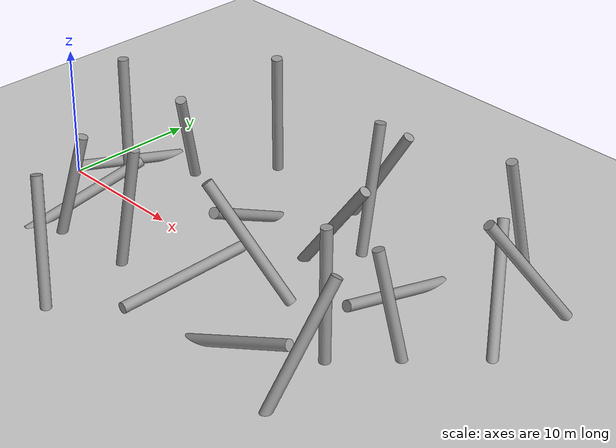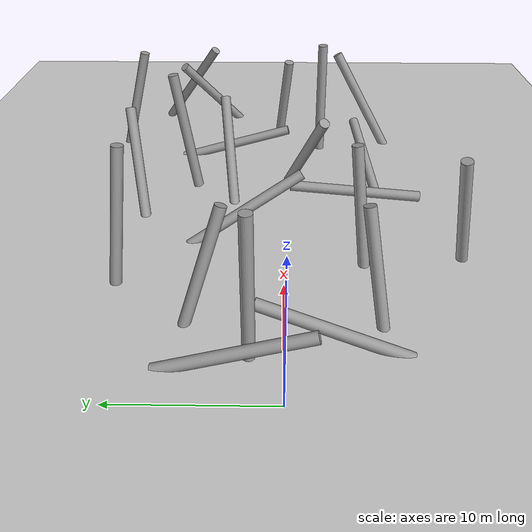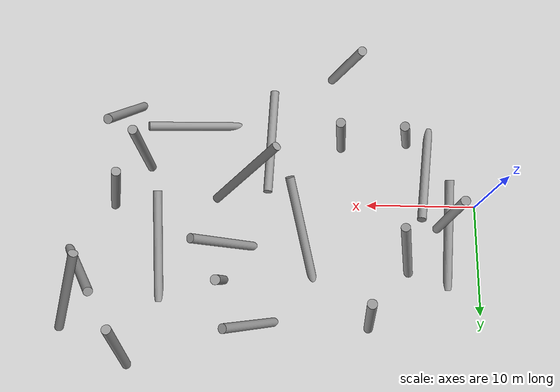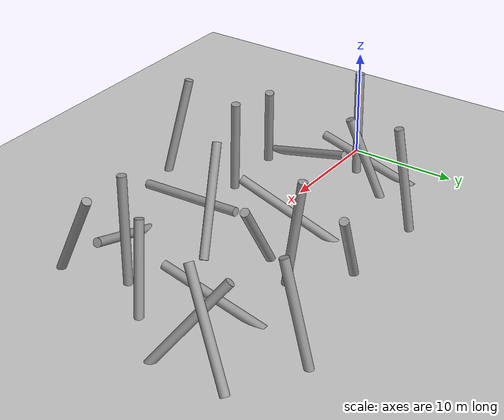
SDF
<sdf version="1.6">
 <world name="default">
  <light name="sun" type="directional">
   <pose>0 0 10 0 -0 0</pose>
   <diffuse>0.8 0.8 0.8 1</diffuse>
   <specular>0.2 0.2 0.2 1</specular>
   <attenuation>
    <range>1000</range>
    <constant>0.9</constant>
    <linear>0.01</linear>
    <quadratic>0.001</quadratic>
   </attenuation>
   <direction>-0.5 0.1 -0.9</direction>
  </light>
  <model name="ground_plane">
   <static>1</static>
   <link name="link">
    <collision name="collision">
     <geometry><plane><normal>0 0 1</normal><size>100 100</size></plane></geometry>
     <surface><friction><ode><mu>100</mu><mu2>50</mu2></ode></friction></surface>
    </collision>
    <visual name="visual">
     <cast_shadows>0</cast_shadows>
     <geometry><plane><normal>0 0 1</normal><size>100 100</size></plane></geometry>
     <material>
      <script><uri>file://media/materials/scripts/gazebo.material</uri><name>Gazebo/Grey</name></script>
     </material>
    </visual>
   </link>
  </model>
  <gravity>0 0 -9.8</gravity>
  <magnetic_field>6e-06 2.3e-05 -4.2e-05</magnetic_field>
  <atmosphere type="adiabatic"/>
  <physics name="default_physics" default="0" type="ode">
   <max_step_size>0.004</max_step_size>
   <real_time_factor>1</real_time_factor>
   <real_time_update_rate>250</real_time_update_rate>
  </physics>
  <scene><ambient>0.4 0.4 0.4 1</ambient><background>0.7 0.7 0.7 1</background><shadows>1</shadows></scene>
  <spherical_coordinates>
   <surface_model>EARTH_WGS84</surface_model>
   <latitude_deg>0</latitude_deg>
   <longitude_deg>0</longitude_deg>
   <elevation>0</elevation>
   <heading_deg>0</heading_deg>
  </spherical_coordinates>
  <model name="column">
   <pose>2.77239 2.86665 1 1.3 -0 0</pose>
   <static>1</static>
   <link name="link">
    <inertial>
     <mass>100</mass>
     <inertia><ixx>0.83</ixx><ixy>0</ixy><ixz>0</ixz><iyy>0.83</iyy><iyz>0</iyz><izz>0.83</izz></inertia>
    </inertial>
    <collision name="collision">
     <geometry><cylinder><radius>0.4</radius><length>10</length></cylinder></geometry>
    </collision>
    <visual name="visual">
     <geometry><cylinder><radius>0.4</radius><length>10</length></cylinder></geometry>
     <material>
      <script><uri>file://media/materials/scripts/gazebo.material</uri><name>Gazebo/Grey</name></script>
     </material>
    </visual>
   </link>
  </model>
  <model name="column_clone">
   <pose>4.67045 -2.93412 1 -1.25 0.5 0</pose>
   <static>1</static>
   <link name="link">
    <inertial>
     <mass>100</mass>
     <inertia><ixx>0.83</ixx><ixy>0</ixy><ixz>0</ixz><iyy>0.83</iyy><iyz>0</iyz><izz>0.83</izz></inertia>
    </inertial>
    <collision name="collision">
     <geometry><cylinder><radius>0.4</radius><length>10</length></cylinder></geometry>
    </collision>
    <visual name="visual">
     <geometry><cylinder><radius>0.4</radius><length>10</length></cylinder></geometry>
     <material>
      <script><uri>file://media/materials/scripts/gazebo.material</uri><name>Gazebo/Grey</name></script>
     </material>
    </visual>
   </link>
  </model>
  <model name="column_clone_0">
   <pose>12.7601 -5.21487 4 -0.1 0.1 0</pose>
   <static>1</static>
   <link name="link">
    <inertial>
     <mass>100</mass>
     <inertia><ixx>0.83</ixx><ixy>0</ixy><ixz>0</ixz><iyy>0.83</iyy><iyz>0</iyz><izz>0.83</izz></inertia>
    </inertial>
    <collision name="collision">
     <geometry><cylinder><radius>0.4</radius><length>10</length></cylinder></geometry>
    </collision>
    <visual name="visual">
     <geometry><cylinder><radius>0.4</radius><length>10</length></cylinder></geometry>
     <material>
      <script><uri>file://media/materials/scripts/gazebo.material</uri><name>Gazebo/Grey</name></script>
     </material>
    </visual>
   </link>
  </model>
  <model name="column_clone_1">
   <pose>16.1423 2.88614 2 1 0.45 0</pose>
   <static>1</static>
   <link name="link">
    <inertial>
     <mass>100</mass>
     <inertia><ixx>0.83</ixx><ixy>0</ixy><ixz>0</ixz><iyy>0.83</iyy><iyz>0</iyz><izz>0.83</izz></inertia>
    </inertial>
    <collision name="collision">
     <geometry><cylinder><radius>0.4</radius><length>10</length></cylinder></geometry>
    </collision>
    <visual name="visual">
     <geometry><cylinder><radius>0.4</radius><length>10</length></cylinder></geometry>
     <material>
      <script><uri>file://media/materials/scripts/gazebo.material</uri><name>Gazebo/Grey</name></script>
     </material>
    </visual>
   </link>
  </model>
  <model name="column_clone_2">
   <pose>20.2191 11.4265 3 -0.15 0.5 -0</pose>
   <static>1</static>
   <link name="link">
    <inertial>
     <mass>100</mass>
     <inertia><ixx>0.83</ixx><ixy>0</ixy><ixz>0</ixz><iyy>0.83</iyy><iyz>0</iyz><izz>0.83</izz></inertia>
    </inertial>
    <collision name="collision">
     <geometry><cylinder><radius>0.4</radius><length>10</length></cylinder></geometry>
    </collision>
    <visual name="visual">
     <geometry><cylinder><radius>0.4</radius><length>10</length></cylinder></geometry>
     <material>
      <script><uri>file://media/materials/scripts/gazebo.material</uri><name>Gazebo/Grey</name></script>
     </material>
    </visual>
   </link>
  </model>
  <model name="column_clone_3">
   <pose>6.95597 5.25991 3 0.3 0.2 0</pose>
   <static>1</static>
   <link name="link">
    <inertial>
     <mass>100</mass>
     <inertia><ixx>0.83</ixx><ixy>0</ixy><ixz>0</ixz><iyy>0.83</iyy><iyz>0</iyz><izz>0.83</izz></inertia>
    </inertial>
    <collision name="collision">
     <geometry><cylinder><radius>0.4</radius><length>10</length></cylinder></geometry>
    </collision>
    <visual name="visual">
     <geometry><cylinder><radius>0.4</radius><length>10</length></cylinder></geometry>
     <material>
      <script><uri>file://media/materials/scripts/gazebo.material</uri><name>Gazebo/Grey</name></script>
     </material>
    </visual>
   </link>
  </model>
  <model name="column_clone_4">
   <pose>35.6321 6.74866 3 -0.55 -0.5 0</pose>
   <static>1</static>
   <link name="link">
    <inertial>
     <mass>100</mass>
     <inertia><ixx>0.83</ixx><ixy>0</ixy><ixz>0</ixz><iyy>0.83</iyy><iyz>0</iyz><izz>0.83</izz></inertia>
    </inertial>
    <collision name="collision">
     <geometry><cylinder><radius>0.4</radius><length>10</length></cylinder></geometry>
    </collision>
    <visual name="visual">
     <geometry><cylinder><radius>0.4</radius><length>10</length></cylinder></geometry>
     <material>
      <script><uri>file://media/materials/scripts/gazebo.material</uri><name>Gazebo/Grey</name></script>
     </material>
    </visual>
   </link>
  </model>
  <model name="column_clone_5">
   <pose>32.0549 -7.3252 4 -0.5 0.15 -0</pose>
   <static>1</static>
   <link name="link">
    <inertial>
     <mass>100</mass>
     <inertia><ixx>0.83</ixx><ixy>0</ixy><ixz>0</ixz><iyy>0.83</iyy><iyz>0</iyz><izz>0.83</izz></inertia>
    </inertial>
    <collision name="collision">
     <geometry><cylinder><radius>0.4</radius><length>10</length></cylinder></geometry>
    </collision>
    <visual name="visual">
     <geometry><cylinder><radius>0.4</radius><length>10</length></cylinder></geometry>
     <material>
      <script><uri>file://media/materials/scripts/gazebo.material</uri><name>Gazebo/Grey</name></script>
     </material>
    </visual>
   </link>
  </model>
  <model name="column_clone_6">
   <pose>22.6792 4.3759 3 -0.100001 0.6 -0</pose>
   <static>1</static>
   <link name="link">
    <inertial>
     <mass>100</mass>
     <inertia><ixx>0.83</ixx><ixy>0</ixy><ixz>0</ixz><iyy>0.83</iyy><iyz>0</iyz><izz>0.83</izz></inertia>
    </inertial>
    <collision name="collision">
     <geometry><cylinder><radius>0.4</radius><length>10</length></cylinder></geometry>
    </collision>
    <visual name="visual">
     <geometry><cylinder><radius>0.4</radius><length>10</length></cylinder></geometry>
     <material>
      <script><uri>file://media/materials/scripts/gazebo.material</uri><name>Gazebo/Grey</name></script>
     </material>
    </visual>
   </link>
  </model>
  <model name="column_clone_7">
   <pose>19.0002 -5.5269 2 1.65 0.649999 -1e-06</pose>
   <static>1</static>
   <link name="link">
    <inertial>
     <mass>100</mass>
     <inertia><ixx>0.83</ixx><ixy>0</ixy><ixz>0</ixz><iyy>0.83</iyy><iyz>0</iyz><izz>0.83</izz></inertia>
    </inertial>
    <collision name="collision">
     <geometry><cylinder><radius>0.4</radius><length>10</length></cylinder></geometry>
    </collision>
    <visual name="visual">
     <geometry><cylinder><radius>0.4</radius><length>10</length></cylinder></geometry>
     <material>
      <script><uri>file://media/materials/scripts/gazebo.material</uri><name>Gazebo/Grey</name></script>
     </material>
    </visual>
   </link>
  </model>
  <model name="column_clone_8">
   <pose>6.75559 -5.66539 3 -0.15 0.2 0</pose>
   <static>1</static>
   <link name="link">
    <inertial>
     <mass>100</mass>
     <inertia><ixx>0.83</ixx><ixy>0</ixy><ixz>0</ixz><iyy>0.83</iyy><iyz>0</iyz><izz>0.83</izz></inertia>
    </inertial>
    <collision name="collision">
     <geometry><cylinder><radius>0.4</radius><length>10</length></cylinder></geometry>
    </collision>
    <visual name="visual">
     <geometry><cylinder><radius>0.4</radius><length>10</length></cylinder></geometry>
     <material>
      <script><uri>file://media/materials/scripts/gazebo.material</uri><name>Gazebo/Grey</name></script>
     </material>
    </visual>
   </link>
  </model>
  <model name="column_clone_9">
   <pose>21.275 -1.67073 4 0.25 -0.6 0</pose>
   <static>1</static>
   <link name="link">
    <inertial>
     <mass>100</mass>
     <inertia><ixx>0.83</ixx><ixy>0</ixy><ixz>0</ixz><iyy>0.83</iyy><iyz>0</iyz><izz>0.83</izz></inertia>
    </inertial>
    <collision name="collision">
     <geometry><cylinder><radius>0.4</radius><length>10</length></cylinder></geometry>
    </collision>
    <visual name="visual">
     <geometry><cylinder><radius>0.4</radius><length>10</length></cylinder></geometry>
     <material>
      <script><uri>file://media/materials/scripts/gazebo.material</uri><name>Gazebo/Grey</name></script>
     </material>
    </visual>
   </link>
  </model>
  <model name="column_clone_11">
   <pose>36.1787 9.0951 4 0.55 -0.35 -0</pose>
   <static>1</static>
   <link name="link">
    <inertial>
     <mass>100</mass>
     <inertia><ixx>0.83</ixx><ixy>0</ixy><ixz>0</ixz><iyy>0.83</iyy><iyz>0</iyz><izz>0.83</izz></inertia>
    </inertial>
    <collision name="collision">
     <geometry><cylinder><radius>0.4</radius><length>10</length></cylinder></geometry>
    </collision>
    <visual name="visual">
     <geometry><cylinder><radius>0.4</radius><length>10</length></cylinder></geometry>
     <material>
      <script><uri>file://media/materials/scripts/gazebo.material</uri><name>Gazebo/Grey</name></script>
     </material>
    </visual>
   </link>
  </model>
  <model name="column_clone_12">
   <pose>30.2374 -3.39832 5 0 -0 0</pose>
   <static>1</static>
   <link name="link">
    <inertial>
     <mass>100</mass>
     <inertia><ixx>0.83</ixx><ixy>0</ixy><ixz>0</ixz><iyy>0.83</iyy><iyz>0</iyz><izz>0.83</izz></inertia>
    </inertial>
    <collision name="collision">
     <geometry><cylinder><radius>0.4</radius><length>10</length></cylinder></geometry>
    </collision>
    <visual name="visual">
     <geometry><cylinder><radius>0.4</radius><length>10</length></cylinder></geometry>
     <material>
      <script><uri>file://media/materials/scripts/gazebo.material</uri><name>Gazebo/Grey</name></script>
     </material>
    </visual>
   </link>
  </model>
  <model name="column_clone_13">
   <pose>23.0831 7.94625 5 -0.15 0 0</pose>
   <static>1</static>
   <link name="link">
    <inertial>
     <mass>100</mass>
     <inertia><ixx>0.83</ixx><ixy>0</ixy><ixz>0</ixz><iyy>0.83</iyy><iyz>0</iyz><izz>0.83</izz></inertia>
    </inertial>
    <collision name="collision">
     <geometry><cylinder><radius>0.4</radius><length>10</length></cylinder></geometry>
    </collision>
    <visual name="visual">
     <geometry><cylinder><radius>0.4</radius><length>10</length></cylinder></geometry>
     <material>
      <script><uri>file://media/materials/scripts/gazebo.material</uri><name>Gazebo/Grey</name></script>
     </material>
    </visual>
   </link>
  </model>
  <model name="column_clone_14">
   <pose>12.3491 -12.0526 4 -0.15 -0.2 0</pose>
   <static>1</static>
   <link name="link">
    <inertial>
     <mass>100</mass>
     <inertia><ixx>0.83</ixx><ixy>0</ixy><ixz>0</ixz><iyy>0.83</iyy><iyz>0</iyz><izz>0.83</izz></inertia>
    </inertial>
    <collision name="collision">
     <geometry><cylinder><radius>0.4</radius><length>10</length></cylinder></geometry>
    </collision>
    <visual name="visual">
     <geometry><cylinder><radius>0.4</radius><length>10</length></cylinder></geometry>
     <material>
      <script><uri>file://media/materials/scripts/gazebo.material</uri><name>Gazebo/Grey</name></script>
     </material>
    </visual>
   </link>
  </model>
  <model name="column_clone_15">
   <pose>32.8013 0.014698 3 0.1 -0.2 0</pose>
   <static>1</static>
   <link name="link">
    <inertial>
     <mass>100</mass>
     <inertia><ixx>0.83</ixx><ixy>0</ixy><ixz>0</ixz><iyy>0.83</iyy><iyz>0</iyz><izz>0.83</izz></inertia>
    </inertial>
    <collision name="collision">
     <geometry><cylinder><radius>0.4</radius><length>10</length></cylinder></geometry>
    </collision>
    <visual name="visual">
     <geometry><cylinder><radius>0.4</radius><length>10</length></cylinder></geometry>
     <material>
      <script><uri>file://media/materials/scripts/gazebo.material</uri><name>Gazebo/Grey</name></script>
     </material>
    </visual>
   </link>
  </model>
  <model name="column_clone_16">
   <pose>29.0671 4.37101 1 1.3 0.1 1e-06</pose>
   <static>1</static>
   <link name="link">
    <inertial>
     <mass>100</mass>
     <inertia><ixx>0.83</ixx><ixy>0</ixy><ixz>0</ixz><iyy>0.83</iyy><iyz>0</iyz><izz>0.83</izz></inertia>
    </inertial>
    <collision name="collision">
     <geometry><cylinder><radius>0.4</radius><length>10</length></cylinder></geometry>
    </collision>
    <visual name="visual">
     <geometry><cylinder><radius>0.4</radius><length>10</length></cylinder></geometry>
     <material>
      <script><uri>file://media/materials/scripts/gazebo.material</uri><name>Gazebo/Grey</name></script>
     </material>
    </visual>
   </link>
  </model>
  <model name="column_clone_17">
   <pose>31.4129 13.78 4 0.25 -0 0</pose>
   <static>1</static>
   <link name="link">
    <inertial>
     <mass>100</mass>
     <inertia><ixx>0.83</ixx><ixy>0</ixy><ixz>0</ixz><iyy>0.83</iyy><iyz>0</iyz><izz>0.83</izz></inertia>
    </inertial>
    <collision name="collision">
     <geometry><cylinder><radius>0.4</radius><length>10</length></cylinder></geometry>
    </collision>
    <visual name="visual">
     <geometry><cylinder><radius>0.4</radius><length>10</length></cylinder></geometry>
     <material>
      <script><uri>file://media/materials/scripts/gazebo.material</uri><name>Gazebo/Grey</name></script>
     </material>
    </visual>
   </link>
  </model>
  <model name="column_clone_18">
   <pose>10.5656 10.8337 5 0.1 0.1 0</pose>
   <static>1</static>
   <link name="link">
    <inertial>
     <mass>100</mass>
     <inertia><ixx>0.83</ixx><ixy>0</ixy><ixz>0</ixz><iyy>0.83</iyy><iyz>0</iyz><izz>0.83</izz></inertia>
    </inertial>
    <collision name="collision">
     <geometry><cylinder><radius>0.4</radius><length>10</length></cylinder></geometry>
    </collision>
    <visual name="visual">
     <geometry><cylinder><radius>0.4</radius><length>10</length></cylinder></geometry>
     <material>
      <script><uri>file://media/materials/scripts/gazebo.material</uri><name>Gazebo/Grey</name></script>
     </material>
    </visual>
   </link>
  </model>
  <model name="column_clone_8_clone">
   <pose>3.5559 2.07682 5 0 -0 0</pose>
   <static>1</static>
   <link name="link">
    <inertial>
     <mass>100</mass>
     <inertia><ixx>0.83</ixx><ixy>0</ixy><ixz>0</ixz><iyy>0.83</iyy><iyz>0</iyz><izz>0.83</izz></inertia>
    </inertial>
    <collision name="collision">
     <geometry><cylinder><radius>0.4</radius><length>10</length></cylinder></geometry>
    </collision>
    <visual name="visual">
     <geometry><cylinder><radius>0.4</radius><length>10</length></cylinder></geometry>
     <material>
      <script><uri>file://media/materials/scripts/gazebo.material</uri><name>Gazebo/Grey</name></script>
     </material>
    </visual>
   </link>
  </model>
  <model name="column_clone_16_clone">
   <pose>25.6333 -7.22777 1 -0.149998 1.2 2e-06</pose>
   <static>1</static>
   <link name="link">
    <inertial>
     <mass>100</mass>
     <inertia><ixx>0.83</ixx><ixy>0</ixy><ixz>0</ixz><iyy>0.83</iyy><iyz>0</iyz><izz>0.83</izz></inertia>
    </inertial>
    <collision name="collision">
     <geometry><cylinder><radius>0.4</radius><length>10</length></cylinder></geometry>
    </collision>
    <visual name="visual">
     <geometry><cylinder><radius>0.4</radius><length>10</length></cylinder></geometry>
     <material>
      <script><uri>file://media/materials/scripts/gazebo.material</uri><name>Gazebo/Grey</name></script>
     </material>
    </visual>
   </link>
  </model>
 </world>
</sdf>
